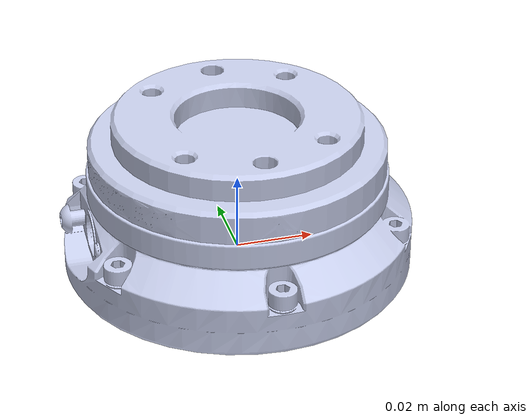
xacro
<?xml version="1.0"?>
<robot xmlns:xacro="http://wiki.ros.org/xacro"
       name="FTS300">

  <link
    name="ft300_base_link">
    <inertial>
      <origin
        xyz="0.0010572 -4.2533E-05 0.0090461"
        rpy="0 0 0" />
      <mass
        value="0.087057" />
      <inertia
        ixx="5.0078E-05"
        ixy="1.5999E-07"
        ixz="4.9014E-07"
        iyy="4.6121E-05"
        iyz="1.9479E-08"
        izz="9.1789E-05" />
    </inertial>
    <visual>
      <origin
        xyz="0 0 0"
        rpy="0 0 0" />
      <geometry>
        <mesh
          filename="package://FTS300/meshes/ft300_base_link.STL" />
      </geometry>
      <material
        name="">
        <color
          rgba="0.79216 0.81961 0.93333 1" />
      </material>
    </visual>
    <collision>
      <origin
        xyz="0 0 0"
        rpy="0 0 0" />
      <geometry>
        <mesh
          filename="package://FTS300/meshes/ft300_base_link.STL" />
      </geometry>
    </collision>
  </link>
  <link
    name="ft300_body_link">
    <inertial>
      <origin
        xyz="-0.00012072 -2.6655E-07 -0.0080141"
        rpy="0 0 0" />
      <mass
        value="0.03538" />
      <inertia
        ixx="1.4211E-05"
        ixy="2.1988E-08"
        ixz="-3.2052E-09"
        iyy="1.3991E-05"
        iyz="-3.4636E-11"
        izz="2.7039E-05" />
    </inertial>
    <visual>
      <origin
        xyz="0 0 0"
        rpy="0 0 0" />
      <geometry>
        <mesh
          filename="package://FTS300/meshes/ft300_body_link.STL" />
      </geometry>
      <material
        name="">
        <color
          rgba="0.79216 0.81961 0.93333 1" />
      </material>
    </visual>
    <collision>
      <origin
        xyz="0 0 0"
        rpy="0 0 0" />
      <geometry>
        <mesh
          filename="package://FTS300/meshes/ft300_body_link.STL" />
      </geometry>
    </collision>
  </link>
  <joint
    name="ft300_body_joint"
    type="fixed">
    <origin
      xyz="0 0 0.0385"
      rpy="0 0 0" />
    <parent
      link="ft300_base_link" />
    <child
      link="ft300_body_link" />
    <axis
      xyz="0 0 0" />
  </joint>
</robot>
